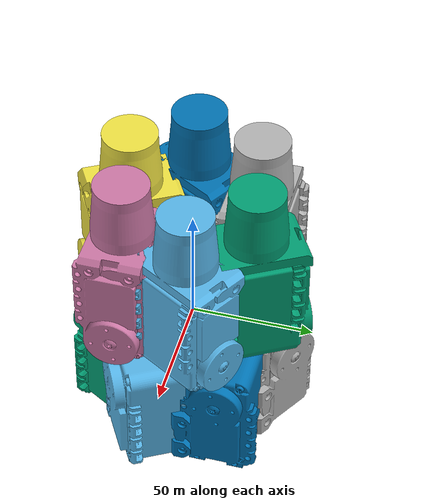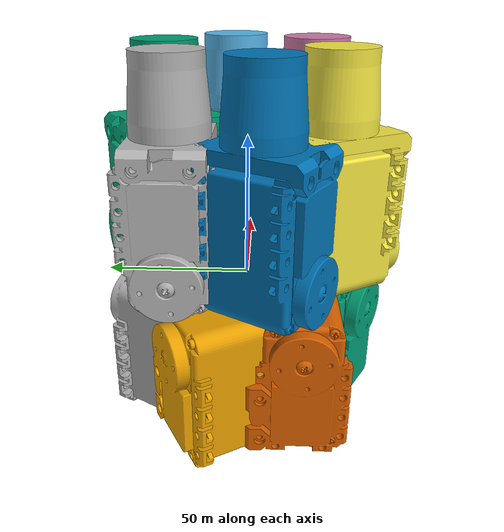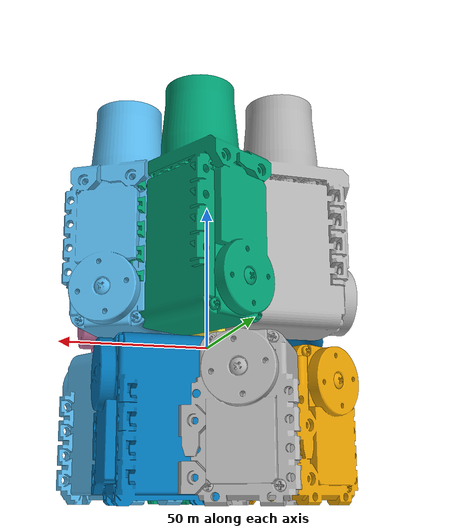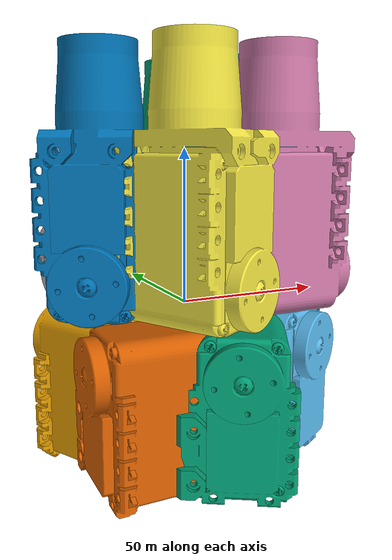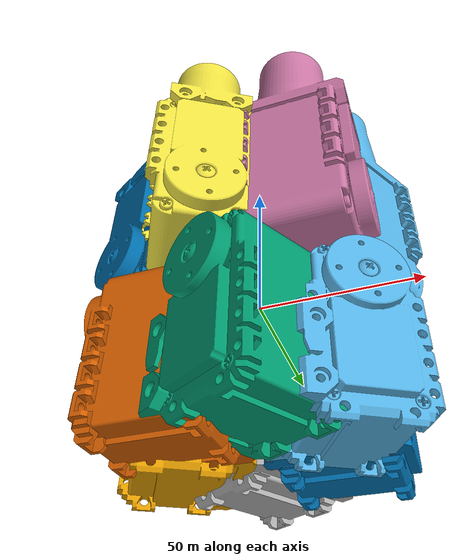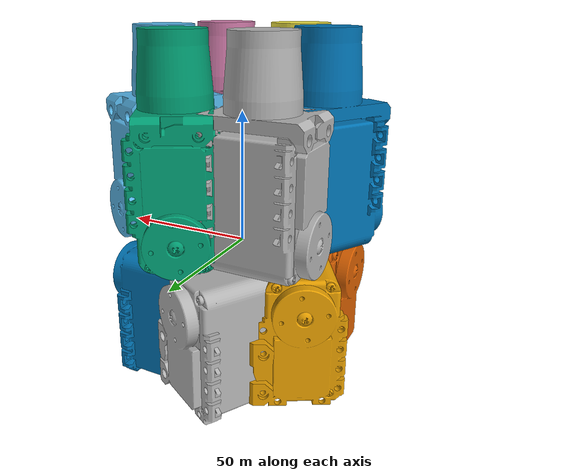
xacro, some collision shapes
<?xml version="1.0"?>
<robot name="Leptan" xmlns:xacro="http://ros.org/wiki/xacro">

  <!-- parameters -->
  <xacro:property name="coxa_length" value="0.0675" />
  <xacro:property name="femur_length" value="0.100" />
  <xacro:property name="tibia_length" value="0.1618" />
  <xacro:property name="ground_offset" value="0.18" />
  <xacro:property name="offset_y" value="0.055" />
  <xacro:property name="offset_y1" value="0.1" />
  <xacro:property name="offset_x" value="0.120" />

  <xacro:macro name="inert" params="mass">
    <inertial>
      <mass value="${mass}" />
      <inertia ixx="1.0" ixy="0.0" ixz="0.0" iyy="1.0" iyz="0.0" izz="1.0" />
    </inertial>
  </xacro:macro>

  <link name="base_link">
    <collision name="collision">
      <geometry>
        <box size="0.032 0.22 0.042"/>
      </geometry>
    </collision>
    <visual name="visual">
      <geometry>
        <mesh filename="package://hexapod_description/meshes/Leptan/Body.dae"/>
      </geometry>
      <origin rpy="${pi} 0 0" xyz="0 0 ${ground_offset}"/>
    </visual>
  </link>

  <!--Leg macro-->
  <xacro:macro name="leg" params="side position x y angle axis">
    <!--Coxa-->
    <link name="coxa_link_${side}${position}">
      <visual>
        <geometry>
          <mesh filename="package://hexapod_description/meshes/Leptan/Coxa.dae"/>
        </geometry>
        <origin rpy="0 ${pi/2} ${(1-axis)/2*pi}" xyz="0 ${axis*coxa_length} 0.024"/>
      </visual>
    </link>

    <joint name="COXA_${side}${position}" type="revolute">
      <child link="coxa_link_${side}${position}"/>
      <parent link="base_link"/>
      <origin rpy="0 0 ${angle}" xyz="${x} ${y} ${ground_offset} "/>
      <axis xyz="0 0 ${-axis}"/>
      <limit effort="1000.0" lower="${-pi/2}" upper="${pi/2}" velocity="0.5"/>
    </joint>

    <!--Femur-->
    <link name="femur_link_${side}${position}">
      <collision name="collision">
        <geometry>
          <box size="0.024 0.025 0.048"/>
        </geometry>
      </collision>
      <visual name="visual">
        <origin rpy="${pi/2} 0 ${axis*pi/2}" xyz="${axis*-0.024} ${femur_length/2} 0"/>
        <geometry>
          <mesh filename="package://hexapod_description/meshes/Leptan/Femur.dae"/>
        </geometry>
      </visual>
    </link>

    <joint name="FEMUR_${side}${position}" type="revolute">
      <origin rpy="0 0 ${(1-axis)/2*pi}" xyz="0 ${axis*(coxa_length)} 0.024"/>
      <child link="femur_link_${side}${position}"/>
      <parent link="coxa_link_${side}${position}"/>
      <axis xyz="1 0 0"/>
      <limit effort="1000.0" lower="-2.4" upper="2.4" velocity="0.5"/>
    </joint>

    <!--Tibia-->
    <link name="tibia_link_${side}${position}">
      <collision name="collision">
        <origin rpy="${pi} ${-pi/2} 0" xyz="0 0 0"/>
        <geometry>
          <mesh filename="package://hexapod_description/meshes/Leptan/TibiaCol.dae"/>
        </geometry>
      </collision>
      <visual name="visual">
        <origin rpy="${pi} ${-pi/2} 0" xyz="0 0 0"/>
        <geometry>
          <mesh filename="package://hexapod_description/meshes/Leptan/Tibia.dae"/>
        </geometry>
      </visual>
    </link>

    <joint name="TIBIA_${side}${position}" type="revolute">
      <origin rpy="0 0 0" xyz="0 ${femur_length} 0"/>
      <child link="tibia_link_${side}${position}"/>
      <parent link="femur_link_${side}${position}"/>
      <axis xyz="1 0 0"/>
      <limit effort="1000.0" lower="-2.3" upper="2.3" velocity="0.5"/>
    </joint>
  </xacro:macro>

  <xacro:leg side="L" position="F" x="${offset_x}"  y="${offset_y}"   angle="${-pi/3}"  axis="1"/>
  <xacro:leg side="L" position="M" x="0"            y="${offset_y1}"  angle="0"         axis="1"/>
  <xacro:leg side="L" position="R" x="${-offset_x}" y="${offset_y}"   angle="${pi/3}"   axis="1"/>
  <xacro:leg side="R" position="F" x="${offset_x}"  y="${-offset_y}"  angle="${pi/3}"   axis="-1"/>
  <xacro:leg side="R" position="M" x="0"            y="${-offset_y1}" angle="0"         axis="-1"/>
  <xacro:leg side="R" position="R" x="${-offset_x}" y="${-offset_y}"  angle="${-pi/3}"  axis="-1"/>

</robot>
